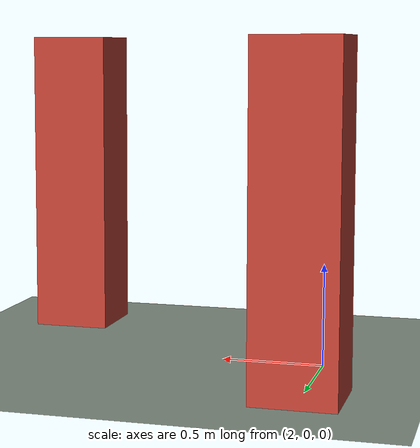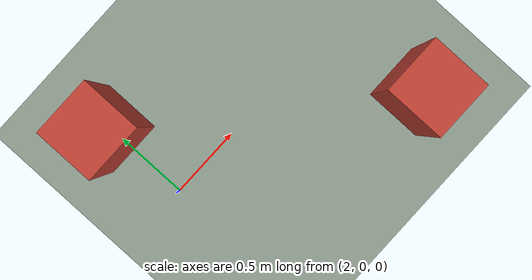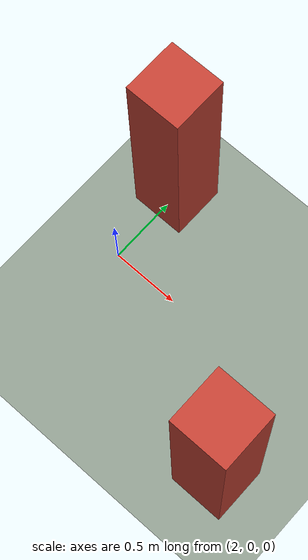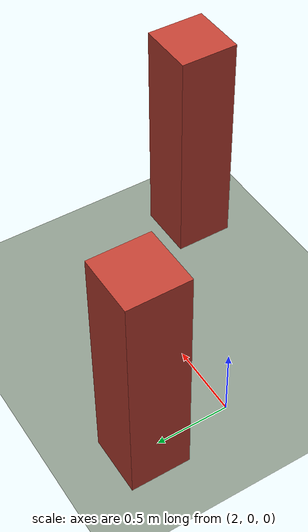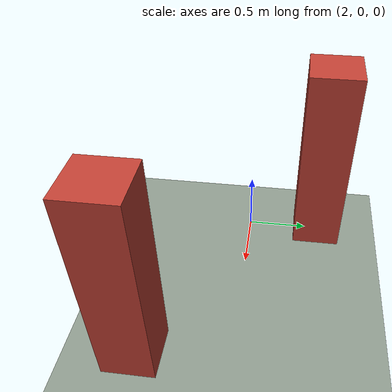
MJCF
<mujoco model="map">
  <compiler angle="radian"/>

  <worldbody>
    <geom name="ground" size="30 30 0.1" type="plane" group="1" friction="1.2" rgba="0.55 0.6 0.55 1"/>
    <geom name="obstacle_0" size="0.2 0.2 0.8" pos="2 0.6 0.8" type="box" group="1" rgba="0.75 0.25 0.2 1"/>
    <geom name="obstacle_1" size="0.2 0.2 0.8" pos="3.5 -0.7 0.8" type="box" group="1" rgba="0.75 0.25 0.2 1"/>
  </worldbody>
</mujoco>
